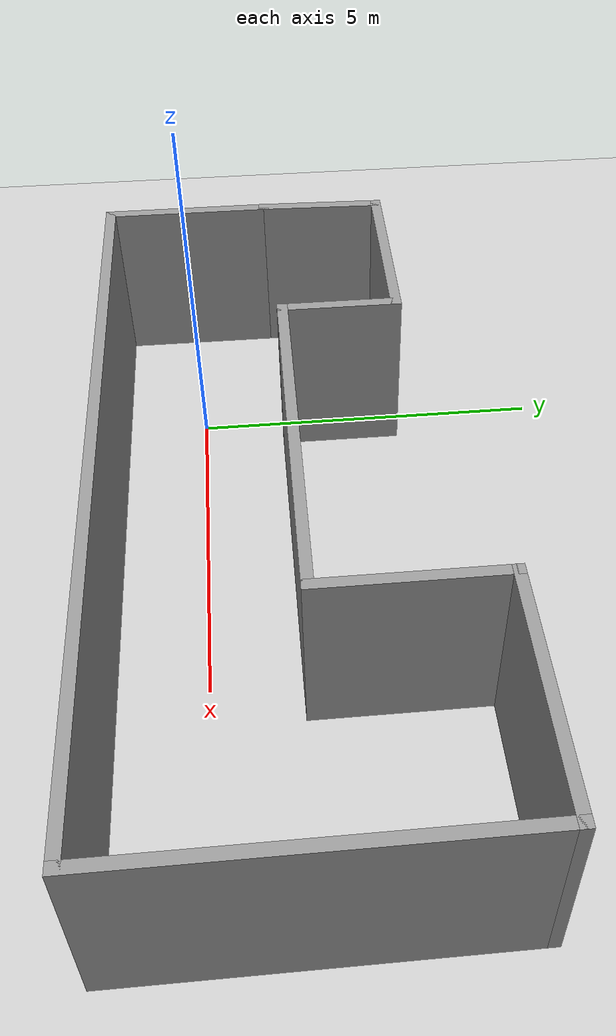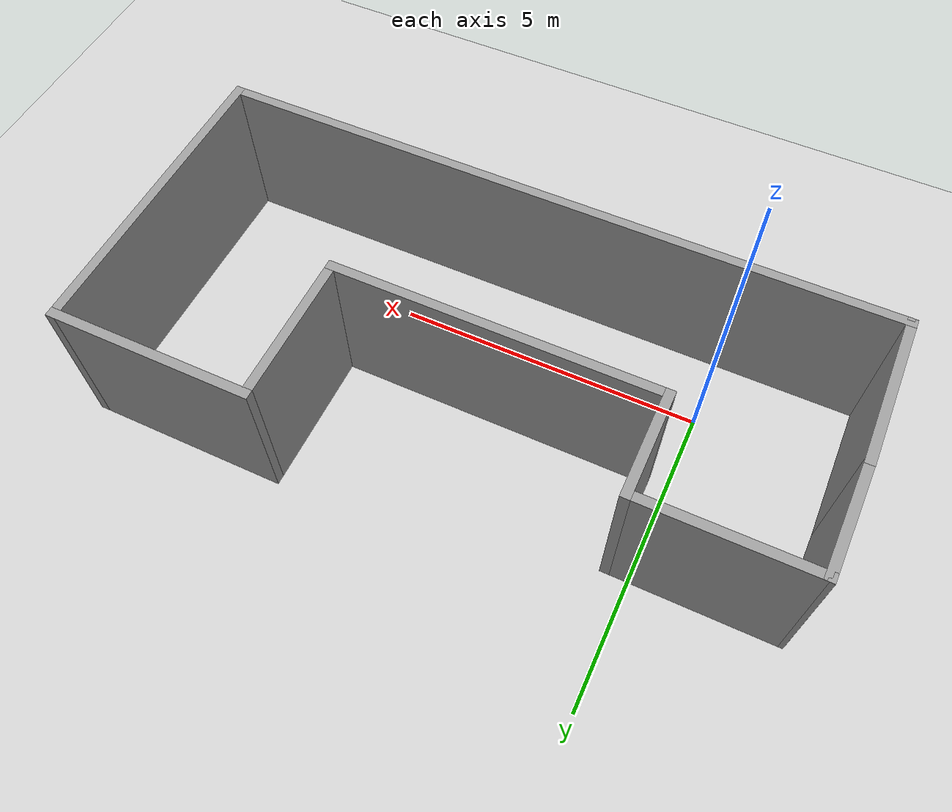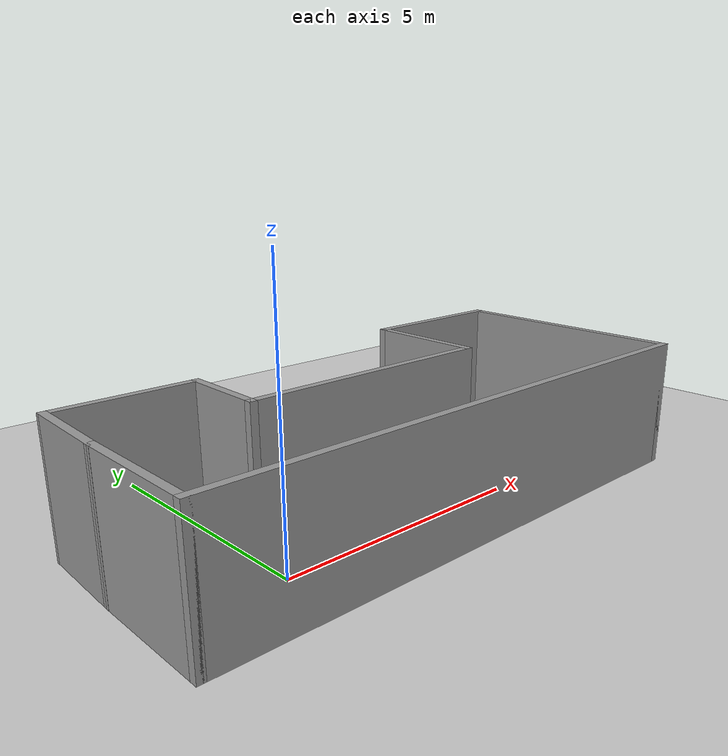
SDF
<sdf version="1.6">
 <world name="default">
  <light name="sun" type="directional">
   <pose>0 0 10 0 -0 0</pose>
   <diffuse>0.8 0.8 0.8 1</diffuse>
   <specular>0.2 0.2 0.2 1</specular>
   <attenuation>
    <range>1000</range>
    <constant>0.9</constant>
    <linear>0.01</linear>
    <quadratic>0.001</quadratic>
   </attenuation>
   <direction>-0.5 0.1 -0.9</direction>
  </light>
  <model name="ground_plane">
   <static>1</static>
   <link name="link">
    <collision name="collision">
     <geometry><plane><normal>0 0 1</normal><size>100 100</size></plane></geometry>
     <surface>
      <contact><collide_bitmask>65535</collide_bitmask></contact>
      <friction><ode><mu>100</mu><mu2>50</mu2></ode></friction>
     </surface>
    </collision>
    <visual name="visual">
     <cast_shadows>0</cast_shadows>
     <geometry><plane><normal>0 0 1</normal><size>100 100</size></plane></geometry>
     <material>
      <script><uri>file://media/materials/scripts/gazebo.material</uri><name>Gazebo/Grey</name></script>
     </material>
    </visual>
   </link>
  </model>
  <gravity>0 0 -9.8</gravity>
  <magnetic_field>6e-06 2.3e-05 -4.2e-05</magnetic_field>
  <atmosphere type="adiabatic"/>
  <physics name="default_physics" default="0" type="ode">
   <max_step_size>0.001</max_step_size>
   <real_time_factor>1</real_time_factor>
   <real_time_update_rate>1000</real_time_update_rate>
  </physics>
  <scene><ambient>0.4 0.4 0.4 1</ambient><background>0.7 0.7 0.7 1</background><shadows>1</shadows></scene>
  <spherical_coordinates>
   <surface_model>EARTH_WGS84</surface_model>
   <latitude_deg>0</latitude_deg>
   <longitude_deg>0</longitude_deg>
   <elevation>0</elevation>
   <heading_deg>0</heading_deg>
  </spherical_coordinates>
  <model name="Untitled">
   <pose>3.13777 1.18496 0 0 -0 0</pose>
   <link name="Wall_1">
    <collision name="Wall_1_Collision">
     <geometry><box><size>2.5 0.15 2.5</size></box></geometry>
     <pose>0 0 1.25 0 -0 0</pose>
    </collision>
    <visual name="Wall_1_Visual">
     <pose>0 0 1.25 0 -0 0</pose>
     <geometry><box><size>2.5 0.15 2.5</size></box></geometry>
     <material>
      <script><uri>file://media/materials/scripts/gazebo.material</uri><name>Gazebo/Grey</name></script>
      <ambient>1 1 1 1</ambient>
     </material>
     <meta><layer>0</layer></meta>
    </visual>
    <pose>-5.42394 -1.25 0 0 0 -1.5708</pose>
   </link>
   <link name="Wall_2">
    <collision name="Wall_2_Collision">
     <geometry><box><size>11 0.15 2.5</size></box></geometry>
     <pose>0 0 1.25 0 -0 0</pose>
    </collision>
    <visual name="Wall_2_Visual">
     <pose>0 0 1.25 0 -0 0</pose>
     <geometry><box><size>11 0.15 2.5</size></box></geometry>
     <material>
      <script><uri>file://media/materials/scripts/gazebo.material</uri><name>Gazebo/Grey</name></script>
      <ambient>1 1 1 1</ambient>
     </material>
     <meta><layer>0</layer></meta>
    </visual>
    <pose>0.001055 -2.425 0 0 -0 0</pose>
   </link>
   <link name="Wall_3">
    <collision name="Wall_3_Collision">
     <geometry><box><size>5 0.15 2.5</size></box></geometry>
     <pose>0 0 1.25 0 -0 0</pose>
    </collision>
    <visual name="Wall_3_Visual">
     <pose>0 0 1.25 0 -0 0</pose>
     <geometry><box><size>5 0.15 2.5</size></box></geometry>
     <material>
      <script><uri>file://media/materials/scripts/gazebo.material</uri><name>Gazebo/Grey</name></script>
      <ambient>1 1 1 1</ambient>
     </material>
     <meta><layer>0</layer></meta>
    </visual>
    <pose>5.42605 0 0 0 -0 1.5708</pose>
   </link>
   <link name="Wall_4">
    <collision name="Wall_4_Collision">
     <geometry><box><size>3.25 0.15 2.5</size></box></geometry>
     <pose>0 0 1.25 0 -0 0</pose>
    </collision>
    <visual name="Wall_4_Visual">
     <pose>0 0 1.25 0 -0 0</pose>
     <geometry><box><size>3.25 0.15 2.5</size></box></geometry>
     <material>
      <script><uri>file://media/materials/scripts/gazebo.material</uri><name>Gazebo/Grey</name></script>
      <ambient>1 1 1 1</ambient>
     </material>
     <meta><layer>0</layer></meta>
    </visual>
    <pose>3.87606 2.425 0 0 -0 3.14159</pose>
   </link>
   <link name="Wall_5">
    <collision name="Wall_5_Collision">
     <geometry><box><size>2.5 0.15 2.5</size></box></geometry>
     <pose>0 0 1.25 0 -0 0</pose>
    </collision>
    <visual name="Wall_5_Visual">
     <pose>0 0 1.25 0 -0 0</pose>
     <geometry><box><size>2.5 0.15 2.5</size></box></geometry>
     <material>
      <script><uri>file://media/materials/scripts/gazebo.material</uri><name>Gazebo/Grey</name></script>
      <ambient>1 1 1 1</ambient>
     </material>
     <meta><layer>0</layer></meta>
    </visual>
    <pose>2.32606 1.25 0 0 0 -1.5708</pose>
   </link>
   <link name="Wall_6">
    <collision name="Wall_6_Collision">
     <geometry><box><size>5.25 0.15 2.5</size></box></geometry>
     <pose>0 0 1.25 0 -0 0</pose>
    </collision>
    <visual name="Wall_6_Visual">
     <pose>0 0 1.25 0 -0 0</pose>
     <geometry><box><size>5.25 0.15 2.5</size></box></geometry>
     <material>
      <script><uri>file://media/materials/scripts/gazebo.material</uri><name>Gazebo/Grey</name></script>
      <ambient>1 1 1 1</ambient>
     </material>
     <meta><layer>0</layer></meta>
    </visual>
    <pose>-0.223945 0.075 0 0 -0 3.14159</pose>
   </link>
   <link name="Wall_7">
    <collision name="Wall_7_Collision">
     <geometry><box><size>1.75 0.15 2.5</size></box></geometry>
     <pose>0 0 1.25 0 -0 0</pose>
    </collision>
    <visual name="Wall_7_Visual">
     <pose>0 0 1.25 0 -0 0</pose>
     <geometry><box><size>1.75 0.15 2.5</size></box></geometry>
     <material>
      <script><uri>file://media/materials/scripts/gazebo.material</uri><name>Gazebo/Grey</name></script>
      <ambient>1 1 1 1</ambient>
     </material>
     <meta><layer>0</layer></meta>
    </visual>
    <pose>-2.77394 0.875 0 0 -0 1.5708</pose>
   </link>
   <link name="Wall_8">
    <collision name="Wall_8_Collision">
     <geometry><box><size>2.75 0.15 2.5</size></box></geometry>
     <pose>0 0 1.25 0 -0 0</pose>
    </collision>
    <visual name="Wall_8_Visual">
     <pose>0 0 1.25 0 -0 0</pose>
     <geometry><box><size>2.75 0.15 2.5</size></box></geometry>
     <material>
      <script><uri>file://media/materials/scripts/gazebo.material</uri><name>Gazebo/Grey</name></script>
      <ambient>1 1 1 1</ambient>
     </material>
     <meta><layer>0</layer></meta>
    </visual>
    <pose>-4.07395 1.675 0 0 -0 3.14159</pose>
   </link>
   <link name="Wall_9">
    <collision name="Wall_9_Collision">
     <geometry><box><size>1.90071 0.15 2.5</size></box></geometry>
     <pose>0 0 1.25 0 -0 0</pose>
    </collision>
    <visual name="Wall_9_Visual">
     <pose>0 0 1.25 0 -0 0</pose>
     <geometry><box><size>1.90071 0.15 2.5</size></box></geometry>
     <material>
      <script><uri>file://media/materials/scripts/gazebo.material</uri><name>Gazebo/Grey</name></script>
      <ambient>1 1 1 1</ambient>
     </material>
     <meta><layer>0</layer></meta>
    </visual>
    <pose>-5.39895 0.8 0 0 0 -1.59936</pose>
   </link>
   <static>1</static>
  </model>
 </world>
</sdf>
